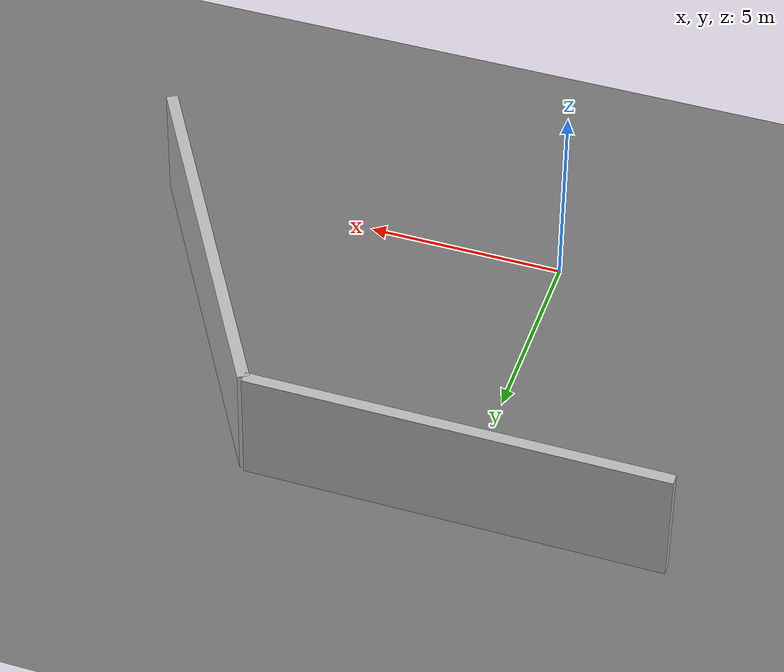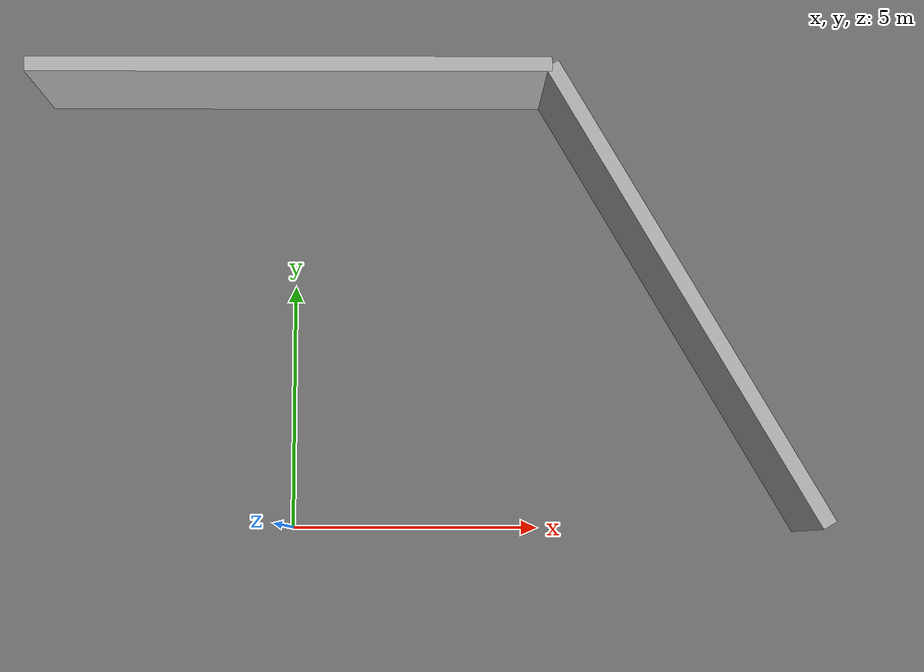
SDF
<sdf version="1.9">
 <world name="empty_world">
  <model name="ground_plane">
   <static>true</static>
   <link name="link">
    <collision name="collision">
     <geometry><plane><normal>0 0 1</normal><size>100 100</size></plane></geometry>
    </collision>
    <visual name="visual">
     <geometry><plane><normal>0 0 1</normal><size>100 100</size></plane></geometry>
     <material>
      <lighting>true</lighting>
      <ambient>0.45 0.45 0.45 1</ambient>
      <diffuse>0.45 0.45 0.45 1</diffuse>
      <specular>0.0 0.0 0.0 1</specular>
     </material>
    </visual>
   </link>
  </model>
  <model name="wall_0">
   <static>true</static>
   <pose>0 9.0 1.5 0 0 0</pose>
   <link name="link">
    <collision name="c"><geometry><box><size>10.39 0.3 3.0</size></box></geometry></collision>
    <visual name="v"><geometry><box><size>10.39 0.3 3.0</size></box></geometry></visual>
   </link>
  </model>
  <model name="wall_5">
   <static>true</static>
   <pose>7.79 4.5 1.5 0 0 -1.0472</pose>
   <link name="link">
    <collision name="c"><geometry><box><size>10.39 0.3 3.0</size></box></geometry></collision>
    <visual name="v"><geometry><box><size>10.39 0.3 3.0</size></box></geometry></visual>
   </link>
  </model>
 </world>
</sdf>
